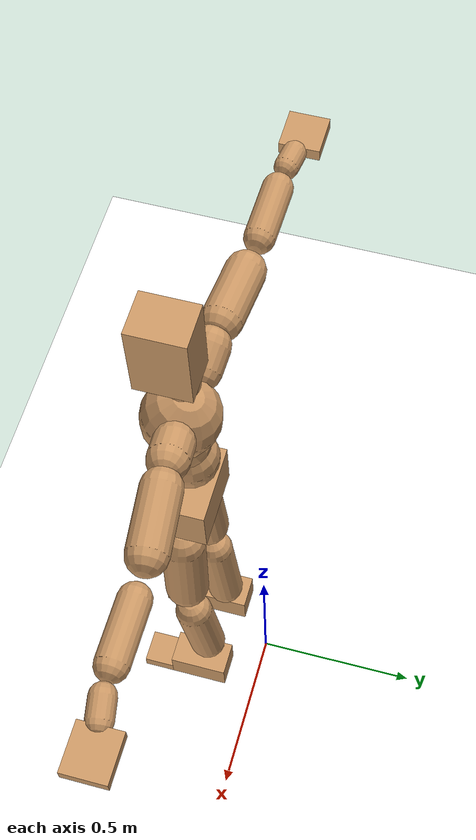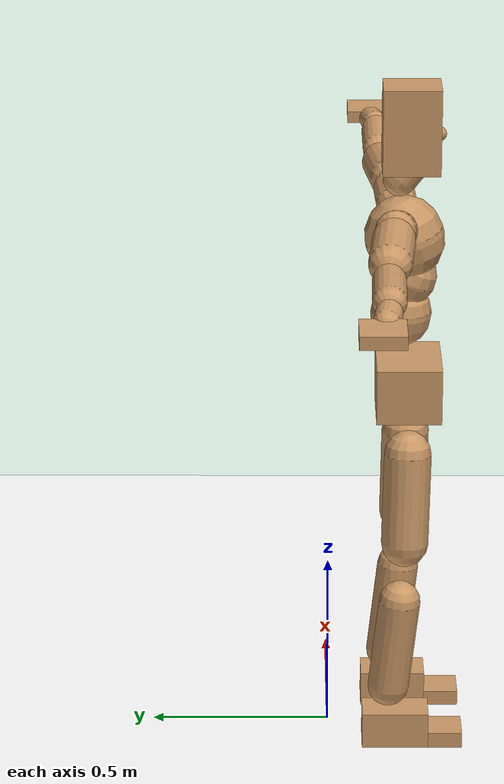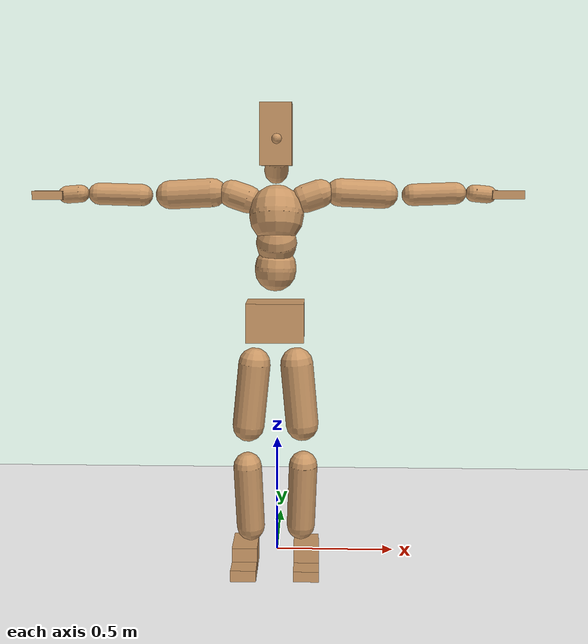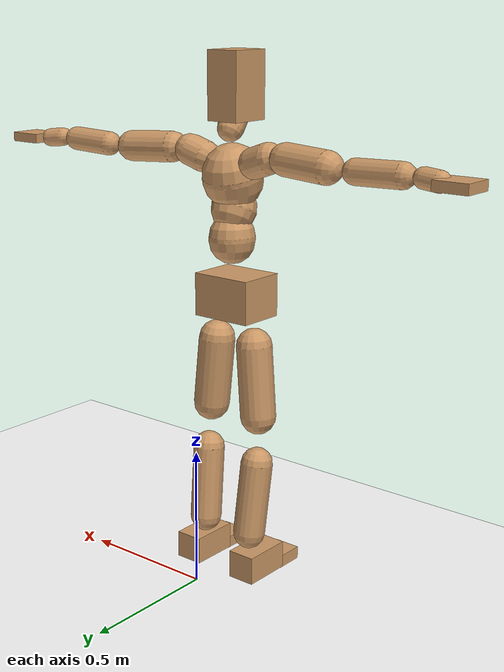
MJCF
<mujoco model="humanoid">
  <option integrator="implicitfast" />

  <visual>
    <global offwidth="1280" offheight="960" />
    <headlight active="1" ambient="0.34 0.34 0.34" diffuse="0.5 0.5 0.5" />
  </visual>

  <default>
    <joint damping="2" stiffness="2" armature="0.01" limited="true" solimplimit="0 .99 .01" />
    <geom condim="1" friction="0.7 0.005 0.0001" solimp=".99 .99 .003" solref="0.015 1" margin="0.001" rgba="0.8 0.6 .4 1" />
    <default class="smplcontact">
      <geom condim="3" friction="1. 0.005 0.0001" solref="0.015 1" solimp="0.98 0.98 0.001" priority="1" />
    </default>
    <default class="stiff_medium">
      <joint stiffness="10" />
    </default>
    <default class="stiff_medium_higher">
      <joint stiffness="50" />
    </default>
    <default class="stiff_high">
      <joint stiffness="100" />
    </default>
  </default>

  <asset>
    <texture type="skybox" builtin="gradient" rgb1="0.99 0.99 0.99" rgb2="0.608 0.828 0.892" width="100" />
    <texture builtin="flat" height="1278" mark="cross" markrgb="1 1 1" name="texgeom" random="0.01" rgb1="0.8 0.6 0.4" rgb2="0.8 0.6 0.4" type="cube" width="127" />
    <texture name="texplane" type="2d" builtin="checker" markrgb="1 1 1" rgb1="0.756 0.772 0.76" rgb2="0.6 0.6 0.6" width="100" height="100" />
    <material name="MatPlane" reflectance="0.5" texture="texplane" texrepeat="1 1" texuniform="true" />
    <material name="geom" texture="texgeom" texuniform="true" />
  </asset>

  <worldbody>
    <light name="tracking_light" pos="0 0 7" dir="0 0 -1" directional="true" cutoff="100" exponent="1" diffuse="1 1 1" specular="0.1 0.1 0.1" mode="trackcom" />
    <camera name="back" pos="0 3 2.4" xyaxes="-1 0 0 0 -1 2" mode="trackcom" />
    <camera name="side" pos="-3 0 2.4" xyaxes="0 -1 0 1 0 2" mode="trackcom" />
    <camera name="front_side" pos="-2.8 -2.8 0.8" xyaxes="0.5 -0.5 0 0.1 0.1 1" mode="trackcom" />
    <geom condim="3" name="floor" pos="0 0 0" rgba="1 1 1 1" size="100 100 .2" type="plane" material="MatPlane" />
    <body name="Pelvis" pos="-0.0018 -0.2233 1.05271" euler="90 0 0">
      <site name="Pelvis" size="0.01" />
      <freejoint name="Pelvis" />
      <geom type="box" pos="-0.0000 -0.0121 -0.0055" size="0.114917 0.077615 0.089225" quat="1.0000 0.0000 0.0000 0.0000" density="3165.830099" name="Pelvis" />
      <body name="L_Hip" pos="0.0781875 -0.102825 -0.00765">
        <joint name="L_Hip_x" type="hinge" pos="0 0 0" axis="1 0 0" stiffness="14.410812000000002" range="-160.0 22.92" class="stiff_medium" damping="22.854949171147215" armature="0.016109777748531916"/>
        <joint name="L_Hip_y" type="hinge" pos="0 0 0" axis="0 1 0" stiffness="14.393977400000002" range="-70.0 70.0" class="stiff_medium" damping="14.845092157070551" armature="0.015310345085849417"/>
        <joint name="L_Hip_z" type="hinge" pos="0 0 0" axis="0 0 1" stiffness="14.397351299999999" range="-28.65 90.0" class="stiff_medium" damping="15.230072573573024" armature="0.016110957200599896"/>
        <geom type="capsule" density="2040.816327" fromto="0.0077625 -0.084375 -0.0010125 0.030825 -0.337725 -0.00405" size="0.0661125" name="L_Hip" />
        <body name="L_Knee" pos="0.0385875 -0.4221 -0.0050625">
          <joint name="L_Knee_x" type="hinge" pos="0 0 0" axis="1 0 0" range="-5.16 171.89" damping="12.104699968495744" armature="0.015966738642201966" stiffness="2.8677538"/>
          <joint name="L_Knee_y" type="hinge" pos="0 0 0" axis="0 1 0" range="-4.58 6.88" damping="11.818803121482325" armature="0.015174685040721753" stiffness="2.8765858"/>
          <joint name="L_Knee_z" type="hinge" pos="0 0 0" axis="0 0 1" range="-6.88 4.58" damping="12.095092915585445" armature="0.015972401753287683" stiffness="2.86218838"/>
          <geom type="capsule" density="1234.567901" fromto="-0.0030375 -0.08955 -0.0097875 -0.0122625 -0.3582 -0.039375" size="0.0581575" name="L_Knee" />
          <body name="L_Ankle" pos="-0.0153 -0.44775 -0.0491625">
            <joint name="L_Ankle_x" type="hinge" pos="0 0 0" axis="1 0 0" range="-45.84 45.84" class="stiff_medium" damping="8.760900554830558" armature="0.015255145253029574" stiffness="13.9758636"/>
            <joint name="L_Ankle_y" type="hinge" pos="0 0 0" axis="0 1 0" range="-74.48 22.92" class="stiff_medium" damping="4.375645586415542" armature="0.015221708564032167" stiffness="13.975854300000002"/>
            <joint name="L_Ankle_z" type="hinge" pos="0 0 0" axis="0 0 1" range="-4.58 4.58" class="stiff_medium" damping="8.688119034588466" armature="0.015002758005398053" stiffness="13.975839999999998"/>
            <geom type="box" pos="0.0262125 -0.0268875 0.027225" size="0.0519225 0.04988 0.091375" quat="1.0000 0.0000 0.0000 0.0000" density="449.071558" name="L_Ankle" class="smplcontact" />
            <body name="L_Toe" pos="0.0297 -0.062775 0.134213">
              <joint name="L_Toe_x" type="hinge" pos="0 0 0" axis="1 0 0" range="-91.67 22.92" armature="0.014875830141426474" damping="2.88376297170037" stiffness="2.7951679999999994"/>
              <joint name="L_Toe_y" type="hinge" pos="0 0 0" axis="0 1 0" range="-4.58 4.58" armature="0.014722348935982876" damping="2.8688478046314474" stiffness="2.7951679999999994"/>
              <joint name="L_Toe_z" type="hinge" pos="0 0 0" axis="0 0 1" range="-4.58 4.58" armature="0.014412018199663328" damping="2.8384507072386" stiffness="2.7951679999999994"/>
              <geom type="box" pos="-0.003375 0.0061875 0.0279" size="0.051385 0.0215 0.05332" quat="1.0000 0.0000 0.0000 0.0000" density="423.206892" name="L_Toe" class="smplcontact" />
            </body>
          </body>
        </body>
      </body>
      <body name="R_Hip" pos="-0.0761625 -0.101813 -0.0048375">
        <joint name="R_Hip_x" type="hinge" pos="0 0 0" axis="1 0 0" stiffness="14.410812000000002" range="-160.0 22.92" class="stiff_medium" damping="22.854949171147215" armature="0.016109777748531916"/>
        <joint name="R_Hip_y" type="hinge" pos="0 0 0" axis="0 1 0" stiffness="14.393977400000002" range="-70.0 70.0" class="stiff_medium" damping="14.845092157070551" armature="0.015310345085849417"/>
        <joint name="R_Hip_z" type="hinge" pos="0 0 0" axis="0 0 1" stiffness="14.397351299999999" range="-90.0 28.65" class="stiff_medium" damping="15.230072573573024" armature="0.016110957200599896"/>
        <geom type="capsule" density="2040.816327" fromto="-0.0086625 -0.0860625 -0.002025 -0.034425 -0.344362 -0.0079875" size="0.065145" name="R_Hip" />
        <body name="R_Knee" pos="-0.0430875 -0.430425 -0.0100125">
          <joint name="R_Knee_x" type="hinge" pos="0 0 0" axis="1 0 0" range="-5.16 171.89" damping="12.104699968495744" armature="0.015966738642201966" stiffness="2.8677538"/>
          <joint name="R_Knee_y" type="hinge" pos="0 0 0" axis="0 1 0" range="-6.88 4.58" damping="11.818803121482325" armature="0.015174685040721753" stiffness="2.8765858"/>
          <joint name="R_Knee_z" type="hinge" pos="0 0 0" axis="0 0 1" range="-4.58 6.88" damping="12.095092915585445" armature="0.015972401753287683" stiffness="2.86218838"/>
          <geom type="capsule" density="1234.567901" fromto="0.0036 -0.0896625 -0.0095625 0.014175 -0.358537 -0.038025" size="0.0581575" name="R_Knee" />
          <body name="R_Ankle" pos="0.017775 -0.4482 -0.0475875">
            <joint name="R_Ankle_x" type="hinge" pos="0 0 0" axis="1 0 0" range="-45.84 45.84" class="stiff_medium" damping="8.760900554830558" armature="0.015255145253029574" stiffness="13.9758636"/>
            <joint name="R_Ankle_y" type="hinge" pos="0 0 0" axis="0 1 0" range="-22.92 74.48" class="stiff_medium" damping="4.375645586415542" armature="0.015221708564032167" stiffness="13.975854300000002"/>
            <joint name="R_Ankle_z" type="hinge" pos="0 0 0" axis="0 0 1" range="-4.58 4.58" class="stiff_medium" damping="8.688119034588466" armature="0.015002758005398053" stiffness="13.975839999999998"/>
            <geom type="box" pos="-0.02385 -0.019575 0.0288" size="0.0519225 0.051385 0.0929875" quat="1.0000 0.0000 0.0000 0.0000" density="434.700981" name="R_Ankle" class="smplcontact" />
            <body name="R_Toe" pos="-0.028575 -0.0541125 0.138713">
              <joint name="R_Toe_x" type="hinge" pos="0 0 0" axis="1 0 0" range="-91.67 22.92" armature="0.014875830141426474" damping="2.88376297170037" stiffness="2.7951679999999994"/>
              <joint name="R_Toe_y" type="hinge" pos="0 0 0" axis="0 1 0" range="-4.58 4.58" armature="0.014722348935982876" damping="2.8688478046314474" stiffness="2.7951679999999994"/>
              <joint name="R_Toe_z" type="hinge" pos="0 0 0" axis="0 0 1" range="-4.58 4.58" armature="0.014412018199663328" damping="2.8384507072386" stiffness="2.7951679999999994"/>
              <geom type="box" pos="0.004725 0.0050625 0.0255375" size="0.0514925 0.02322 0.0529975" quat="1.0000 0.0000 0.0000 0.0000" density="407.384095" name="R_Toe" class="smplcontact" />
            </body>
          </body>
        </body>
      </body>
      <body name="Torso" pos="-0.00275 0.1199 -0.02937">
        <joint name="Torso_x" type="hinge" pos="0 0 0" axis="1 0 0" range="-25.78 57.3" class="stiff_medium" damping="20.638694575886987" armature="0.014235746711939945" stiffness="13.29847"/>
        <joint name="Torso_y" type="hinge" pos="0 0 0" axis="0 1 0" range="-57.3 57.3" class="stiff_high" damping="29.041333557106196" armature="0.016030194160405888" stiffness="131.53288199999997"/>
        <joint name="Torso_z" type="hinge" pos="0 0 0" axis="0 0 1" range="-34.38 34.38" class="stiff_high" damping="28.103522901323004" armature="0.014855044989291149" stiffness="132.9191530612245"/>
        <geom type="capsule" density="2040.816327" fromto="0.00275 0.06688 0.00055 0.0033 0.08173 0.00066" size="0.0826675" name="Torso" />
        <body name="Spine" pos="0.00605 0.14872 0.00121">
          <joint name="Spine_x" type="hinge" pos="0 0 0" axis="1 0 0" stiffness="13.169389599999997" range="-25.78 57.3" class="stiff_medium" damping="20.207068856569617" armature="0.013780293854036105"/>
          <joint name="Spine_y" type="hinge" pos="0 0 0" axis="0 1 0" stiffness="13.1473906" range="-57.3 57.3" class="stiff_high" damping="11.618115097078789" armature="0.016041752423025732"/>
          <joint name="Spine_z" type="hinge" pos="0 0 0" axis="0 0 1" stiffness="26.203810400000002" range="-34.38 34.38" class="stiff_high" damping="16.84061478499759" armature="0.015032075170633681"/>
          <geom type="capsule" density="2040.816327" fromto="0.00077 0.02618 0.01254 0.00088 0.03201 0.0154" size="0.0811625" name="Spine" />
          <body name="Chest" pos="0.00165 0.05819 0.02794">
            <joint name="Chest_x" type="hinge" pos="0 0 0" axis="1 0 0" stiffness="12.987744285714287" range="-25.78 57.3" class="stiff_medium" damping="19.89224937555902" armature="0.013541025087942176"/>
            <joint name="Chest_y" type="hinge" pos="0 0 0" axis="0 1 0" stiffness="13.579875625" range="-57.3 57.3" class="stiff_high" damping="11.81270746764638" armature="0.016055474011864863"/>
            <joint name="Chest_z" type="hinge" pos="0 0 0" axis="0 0 1" stiffness="25.9366268" range="-34.38 34.38" class="stiff_high" damping="16.82081173988103" armature="0.015151230694932393"/>
            <geom type="capsule" density="2040.816327" fromto="-0.00099 0.07502 -0.01903 -0.0011 0.09163 -0.02332" size="0.107715" name="Chest" />
            <body name="Neck" pos="-0.00308 0.23529 -0.04719">
              <joint name="Neck_x" type="hinge" pos="0 0 0" axis="1 0 0" range="-28.65 57.3" class="stiff_medium_higher" damping="11.305598073646944" armature="0.011369242829146918" stiffness="56.211547999999986"/>
              <joint name="Neck_y" type="hinge" pos="0 0 0" axis="0 1 0" range="-40.11 40.11" class="stiff_medium_higher" damping="11.350487865206517" armature="0.011499982288412125" stiffness="56.014684"/>
              <joint name="Neck_z" type="hinge" pos="0 0 0" axis="0 0 1" range="-40.11 40.11" class="stiff_medium_higher" damping="11.245455209418221" armature="0.011356326653095206" stiffness="55.678331"/>
              <geom type="capsule" density="1000" fromto="0.0011 0.0143 0.01133 0.00451 0.0572 0.04521" size="0.04687" name="Neck" />
              <body name="Head" pos="0.00533 0.066625 0.0525825">
                <joint name="Head_x" type="hinge" pos="0 0 0" axis="1 0 0" range="-28.65 57.3" class="stiff_medium_higher" damping="2.235050866262729" armature="0.011314082128906286" stiffness="55.19065"/>
                <joint name="Head_y" type="hinge" pos="0 0 0" axis="0 1 0" range="-40.11 40.11" class="stiff_medium_higher" damping="2.235050866262725" armature="0.011314082128906248" stiffness="55.19065"/>
                <joint name="Head_z" type="hinge" pos="0 0 0" axis="0 0 1" range="-40.11 40.11" class="stiff_medium_higher" damping="2.235050866262726" armature="0.011314082128906262" stiffness="55.19065"/>
                <geom type="box" pos="-0.004305 0.08979 -0.01189" size="0.062115 0.118285 0.0779" quat="1.0000 0.0000 0.0000 0.0000" density="1018.069894" name="Head" />
                <geom type="capsule" name="nose" size="0.0205 0.01025" pos="0 0.07175 0.05125" quat="1 0 0 0" mass="0" contype="0" conaffinity="0" />
              </body>
            </body>
            <body name="L_Thorax" pos="0.08865 0.136912 -0.0383625">
              <joint name="L_Thorax_x" type="hinge" pos="0 0 0" axis="1 0 0" range="-10.89 4.58" class="stiff_medium_higher" damping="29.875416737227255" armature="0.015524661108522114" stiffness="71.864735"/>
              <joint name="L_Thorax_y" type="hinge" pos="0 0 0" axis="0 1 0" range="-28.65 17.19" class="stiff_medium_higher" damping="30.46023224133231" armature="0.016120725450527895" stiffness="71.943548"/>
              <joint name="L_Thorax_z" type="hinge" pos="0 0 0" axis="0 0 1" range="-31.51 40.11" class="stiff_medium_higher" damping="30.46042444933095" armature="0.016121264685985192" stiffness="71.9420495"/>
              <geom type="capsule" density="1000" fromto="0.020475 0.0068625 -0.002025 0.0819 0.02745 -0.0079875" size="0.0560075" name="L_Thorax" />
              <body name="L_Shoulder" pos="0.102375 0.0343125 -0.0100125">
                <joint name="L_Shoulder_x" type="hinge" pos="0 0 0" axis="1 0 0" range="-97.4 97.4" class="stiff_medium" damping="8.891497511873233" armature="0.015287725943742305" stiffness="14.3649604"/>
                <joint name="L_Shoulder_y" type="hinge" pos="0 0 0" axis="0 1 0" range="-108.86 80.21" class="stiff_medium" damping="9.12932330228466" armature="0.01609825374583502" stiffness="14.381225800000001"/>
                <joint name="L_Shoulder_z" type="hinge" pos="0 0 0" axis="0 0 1" range="-97.4 85.94" class="stiff_medium" damping="9.129671606651154" armature="0.016098940105424855" stiffness="14.381709999999998"/>
                <geom type="capsule" density="1000" fromto="0.0583875 -0.002925 -0.0061875 0.233662 -0.011475 -0.02475" size="0.0555775" name="L_Shoulder" />
                <body name="L_Elbow" pos="0.29205 -0.0144 -0.0309375">
                  <joint name="L_Elbow_x" type="hinge" pos="0 0 0" axis="1 0 0" range="-17.19 4.58" damping="7.30576719565563" armature="0.014915352919147376" stiffness="2.8627808999999997"/>
                  <joint name="L_Elbow_y" type="hinge" pos="0 0 0" axis="0 1 0" range="-180.0 17.19" damping="7.564194946716546" armature="0.01598908159050902" stiffness="2.86280584"/>
                  <joint name="L_Elbow_z" type="hinge" pos="0 0 0" axis="0 0 1" range="-100.84 4.58" damping="7.5645786108349125" armature="0.01599268139557873" stiffness="2.8624517999999997"/>
                  <geom type="capsule" density="1000" fromto="0.056025 0.002025 -0.000225 0.224325 0.0081 -0.0010125" size="0.0435375" name="L_Elbow" />
                  <body name="L_Wrist" pos="0.28035 0.010125 -0.00135">
                    <joint name="L_Wrist_x" type="hinge" pos="0 0 0" axis="1 0 0" range="-180.0 22.92" armature="0.014818983949092077" damping="2.890332271402255" stiffness="2.8186887400000007"/>
                    <joint name="L_Wrist_y" type="hinge" pos="0 0 0" axis="0 1 0" range="-17.19 17.19" armature="0.015629307437106565" damping="2.970094728305097" stiffness="2.8220900799999997"/>
                    <joint name="L_Wrist_z" type="hinge" pos="0 0 0" axis="0 0 1" range="-22.92 22.92" armature="0.01567420436707499" damping="2.97377994637546" stiffness="2.8209939600000005"/>
                    <geom type="capsule" density="1000" fromto="0.0189 -0.0018 -0.003375 0.0756 -0.0073125 -0.0135" size="0.034185" name="L_Wrist" class="smplcontact" />
                    <body name="L_Hand" pos="0.0945 -0.009225 -0.0167625">
                      <joint name="L_Hand_x" type="hinge" pos="0 0 0" axis="1 0 0" range="-17.19 17.19" armature="0.014415827577295884" damping="2.8388258114077716" stiffness="2.7951679999999994"/>
                      <joint name="L_Hand_y" type="hinge" pos="0 0 0" axis="0 1 0" range="-51.57 51.57" armature="0.015076278672215677" damping="2.9031269935591775" stiffness="2.7951679999999994"/>
                      <joint name="L_Hand_z" type="hinge" pos="0 0 0" axis="0 0 1" range="-91.67 91.67" armature="0.015252330935363094" damping="2.9200283339699626" stiffness="2.7951679999999994"/>
                      <geom type="box" pos="0.0554625 0.001125 -0.006525" size="0.0628875 0.016985 0.057835" quat="1.0000 0.0000 0.0000 0.0000" density="400.552564" name="L_Hand" class="smplcontact" />
                    </body>
                  </body>
                </body>
              </body>
            </body>
            <body name="R_Thorax" pos="-0.092025 0.13365 -0.043425">
              <joint name="R_Thorax_x" type="hinge" pos="0 0 0" axis="1 0 0" range="-10.89 4.58" class="stiff_medium_higher" damping="29.875416737227255" armature="0.015524661108522114" stiffness="71.864735"/>
              <joint name="R_Thorax_y" type="hinge" pos="0 0 0" axis="0 1 0" range="-17.19 28.65" class="stiff_medium_higher" damping="30.46023224133231" armature="0.016120725450527895" stiffness="71.943548"/>
              <joint name="R_Thorax_z" type="hinge" pos="0 0 0" axis="0 0 1" range="-40.11 31.51" class="stiff_medium_higher" damping="30.46042444933095" armature="0.016121264685985192" stiffness="71.9420495"/>
              <geom type="capsule" density="1000" fromto="-0.0216 0.0073125 -0.002025 -0.0864 0.02925 -0.0082125" size="0.0549325" name="R_Thorax" />
              <body name="R_Shoulder" pos="-0.108 0.036675 -0.0102375">
                <joint name="R_Shoulder_x" type="hinge" pos="0 0 0" axis="1 0 0" range="-97.4 97.4" class="stiff_medium" damping="8.891497511873233" armature="0.015287725943742305" stiffness="14.3649604"/>
                <joint name="R_Shoulder_y" type="hinge" pos="0 0 0" axis="0 1 0" range="-80.21 108.86" class="stiff_medium" damping="9.12932330228466" armature="0.01609825374583502" stiffness="14.381225800000001"/>
                <joint name="R_Shoulder_z" type="hinge" pos="0 0 0" axis="0 0 1" range="-85.94 97.4" class="stiff_medium" damping="9.129671606651154" armature="0.016098940105424855" stiffness="14.381709999999998"/>
                <geom type="capsule" density="1000" fromto="-0.0570375 -0.0030375 -0.0048375 -0.228375 -0.0120375 -0.0192375" size="0.0570825" name="R_Shoulder" />
                <body name="R_Elbow" pos="-0.285412 -0.0149625 -0.024075">
                  <joint name="R_Elbow_x" type="hinge" pos="0 0 0" axis="1 0 0" range="-17.19 4.58" damping="7.30576719565563" armature="0.014915352919147376" stiffness="2.8627808999999997"/>
                  <joint name="R_Elbow_y" type="hinge" pos="0 0 0" axis="0 1 0" range="-17.19 180.0" damping="7.564194946716546" armature="0.01598908159050902" stiffness="2.86280584"/>
                  <joint name="R_Elbow_z" type="hinge" pos="0 0 0" axis="0 0 1" range="-4.58 100.84" damping="7.5645786108349125" armature="0.01599268139557873" stiffness="2.8624517999999997"/>
                  <geom type="capsule" density="1000" fromto="-0.0574875 0.0018 -0.0012375 -0.229725 0.006975 -0.00495" size="0.04386" name="R_Elbow" />
                  <body name="R_Wrist" pos="-0.287213 0.008775 -0.0063">
                    <joint name="R_Wrist_x" type="hinge" pos="0 0 0" axis="1 0 0" range="-180.0 22.92" armature="0.014818983949092077" damping="2.890332271402255" stiffness="2.8186887400000007"/>
                    <joint name="R_Wrist_y" type="hinge" pos="0 0 0" axis="0 1 0" range="-17.19 17.19" armature="0.015629307437106565" damping="2.970094728305097" stiffness="2.8220900799999997"/>
                    <joint name="R_Wrist_z" type="hinge" pos="0 0 0" axis="0 0 1" range="-22.92 22.92" armature="0.01567420436707499" damping="2.97377994637546" stiffness="2.8209939600000005"/>
                    <geom type="capsule" density="1000" fromto="-0.0190125 -0.00135 -0.0023625 -0.0761625 -0.0055125 -0.0093375" size="0.035045" name="R_Wrist" class="smplcontact" />
                    <body name="R_Hand" pos="-0.095175 -0.0068625 -0.0115875">
                      <joint name="R_Hand_x" type="hinge" pos="0 0 0" axis="1 0 0" range="-17.19 17.19" armature="0.014415827577295884" damping="2.8388258114077716" stiffness="2.7951679999999994"/>
                      <joint name="R_Hand_y" type="hinge" pos="0 0 0" axis="0 1 0" range="-51.57 51.57" armature="0.015076278672215677" damping="2.9031269935591775" stiffness="2.7951679999999994"/>
                      <joint name="R_Hand_z" type="hinge" pos="0 0 0" axis="0 0 1" range="-91.67 91.67" armature="0.015252330935363094" damping="2.9200283339699626" stiffness="2.7951679999999994"/>
                      <geom type="box" pos="-0.051975 -0.0010125 -0.0088875" size="0.0611675 0.01763 0.058695" quat="1.0000 0.0000 0.0000 0.0000" density="403.679611" name="R_Hand" class="smplcontact" />
                    </body>
                  </body>
                </body>
              </body>
            </body>
          </body>
        </body>
      </body>
    </body>
  </worldbody>
  <actuator>
    <general name="L_Hip_x" joint="L_Hip_x" biastype="affine" gainprm="414.0659535654464" biasprm="-310.30046421797175 -259.39461600000004 -3.047326556152962" ctrllimited="true" ctrlrange="-1 1" forcerange="-518.7892320000001 518.7892320000001" />
    <general name="L_Hip_y" joint="L_Hip_y" biastype="affine" gainprm="316.5400955904426" biasprm="0.0 -259.09159320000003 -2.9690184314141104" ctrllimited="true" ctrlrange="-1 1" forcerange="-518.1831864000001 518.1831864000001" />
    <general name="L_Hip_z" joint="L_Hip_z" biastype="affine" gainprm="268.33061206881064" biasprm="138.74490560827246 -259.1523234 -3.0460145147146047" ctrllimited="true" ctrlrange="-1 1" forcerange="-518.3046468 518.3046468" />
    <general name="L_Knee_x" joint="L_Knee_x" biastype="affine" gainprm="398.77477289288123" biasprm="375.53074207528994 -258.097842 -3.026174992123936" ctrllimited="true" ctrlrange="-1 1" forcerange="-516.195684 516.195684" />
    <general name="L_Knee_y" joint="L_Knee_y" biastype="affine" gainprm="25.891179239847556" biasprm="5.196309969602913 -258.892722 -2.9547007803705814" ctrllimited="true" ctrlrange="-1 1" forcerange="-517.785444 517.785444" />
    <general name="L_Knee_z" joint="L_Knee_z" biastype="affine" gainprm="25.761592915041472" biasprm="-5.170302242983891 -257.5969542 -3.0237732288963612" ctrllimited="true" ctrlrange="-1 1" forcerange="-515.1939084 515.1939084" />
    <general name="L_Ankle_x" joint="L_Ankle_x" biastype="affine" gainprm="100.63363018735926" biasprm="0.0 -125.7827724 -2.9203001849435193" ctrllimited="true" ctrlrange="-1 1" forcerange="-251.5655448 251.5655448" />
    <general name="L_Ankle_y" joint="L_Ankle_y" biastype="affine" gainprm="106.91218431352944" biasprm="-56.595402702316 -125.78268870000001 -2.917097057610362" ctrllimited="true" ctrlrange="-1 1" forcerange="-251.56537740000002 251.56537740000002" />
    <general name="L_Ankle_z" joint="L_Ankle_z" biastype="affine" gainprm="10.054564746229916" biasprm="0.0 -125.78255999999998 -2.8960396781961553" ctrllimited="true" ctrlrange="-1 1" forcerange="-251.56511999999995 251.56511999999995" />
    <general name="L_Toe_x" joint="L_Toe_x" biastype="affine" gainprm="100.62467897558831" biasprm="-60.371294873651244 -100.62604799999998 -1.153505188680148" ctrllimited="true" ctrlrange="-1 1" forcerange="-201.25209599999997 201.25209599999997" />
    <general name="L_Toe_y" joint="L_Toe_y" biastype="affine" gainprm="8.043651796983934" biasprm="0.0 -100.62604799999998 -1.147539121852579" ctrllimited="true" ctrlrange="-1 1" forcerange="-201.25209599999997 201.25209599999997" />
    <general name="L_Toe_z" joint="L_Toe_z" biastype="affine" gainprm="8.043651796983934" biasprm="0.0 -100.62604799999998 -1.13538028289544" ctrllimited="true" ctrlrange="-1 1" forcerange="-201.25209599999997 201.25209599999997" />
    <general name="R_Hip_x" joint="R_Hip_x" biastype="affine" gainprm="414.0659535654464" biasprm="-310.30046421797175 -259.39461600000004 -3.047326556152962" ctrllimited="true" ctrlrange="-1 1" forcerange="-518.7892320000001 518.7892320000001" />
    <general name="R_Hip_y" joint="R_Hip_y" biastype="affine" gainprm="316.5400955904426" biasprm="0.0 -259.09159320000003 -2.9690184314141104" ctrllimited="true" ctrlrange="-1 1" forcerange="-518.1831864000001 518.1831864000001" />
    <general name="R_Hip_z" joint="R_Hip_z" biastype="affine" gainprm="268.33061206881064" biasprm="-138.74490560827246 -259.1523234 -3.0460145147146047" ctrllimited="true" ctrlrange="-1 1" forcerange="-518.3046468 518.3046468" />
    <general name="R_Knee_x" joint="R_Knee_x" biastype="affine" gainprm="398.77477289288123" biasprm="375.53074207528994 -258.097842 -3.026174992123936" ctrllimited="true" ctrlrange="-1 1" forcerange="-516.195684 516.195684" />
    <general name="R_Knee_y" joint="R_Knee_y" biastype="affine" gainprm="25.891179239847556" biasprm="-5.196309969602913 -258.892722 -2.9547007803705814" ctrllimited="true" ctrlrange="-1 1" forcerange="-517.785444 517.785444" />
    <general name="R_Knee_z" joint="R_Knee_z" biastype="affine" gainprm="25.761592915041472" biasprm="5.170302242983891 -257.5969542 -3.0237732288963612" ctrllimited="true" ctrlrange="-1 1" forcerange="-515.1939084 515.1939084" />
    <general name="R_Ankle_x" joint="R_Ankle_x" biastype="affine" gainprm="100.63363018735926" biasprm="0.0 -125.7827724 -2.9203001849435193" ctrllimited="true" ctrlrange="-1 1" forcerange="-251.5655448 251.5655448" />
    <general name="R_Ankle_y" joint="R_Ankle_y" biastype="affine" gainprm="106.91218431352944" biasprm="56.595402702316 -125.78268870000001 -2.917097057610362" ctrllimited="true" ctrlrange="-1 1" forcerange="-251.56537740000002 251.56537740000002" />
    <general name="R_Ankle_z" joint="R_Ankle_z" biastype="affine" gainprm="10.054564746229916" biasprm="0.0 -125.78255999999998 -2.8960396781961553" ctrllimited="true" ctrlrange="-1 1" forcerange="-251.56511999999995 251.56511999999995" />
    <general name="R_Toe_x" joint="R_Toe_x" biastype="affine" gainprm="100.62467897558831" biasprm="-60.371294873651244 -100.62604799999998 -1.153505188680148" ctrllimited="true" ctrlrange="-1 1" forcerange="-201.25209599999997 201.25209599999997" />
    <general name="R_Toe_y" joint="R_Toe_y" biastype="affine" gainprm="8.043651796983934" biasprm="0.0 -100.62604799999998 -1.147539121852579" ctrllimited="true" ctrlrange="-1 1" forcerange="-201.25209599999997 201.25209599999997" />
    <general name="R_Toe_z" joint="R_Toe_z" biastype="affine" gainprm="8.043651796983934" biasprm="0.0 -100.62604799999998 -1.13538028289544" ctrllimited="true" ctrlrange="-1 1" forcerange="-201.25209599999997 201.25209599999997" />
    <general name="Torso_x" joint="Torso_x" biastype="affine" gainprm="231.39649663327813" biasprm="87.79029337844156 -319.16328 -5.503651886903197" ctrllimited="true" ctrlrange="-1 1" forcerange="-478.74492 478.74492" />
    <general name="Torso_y" joint="Torso_y" biastype="affine" gainprm="315.7021701486735" biasprm="0.0 -315.6789167999999 -5.808266711421239" ctrllimited="true" ctrlrange="-1 1" forcerange="-473.5183751999999 473.5183751999999" />
    <general name="Torso_z" joint="Torso_z" biastype="affine" gainprm="191.41767946247367" biasprm="0.0 -319.0059673469388 -5.620704580264601" ctrllimited="true" ctrlrange="-1 1" forcerange="-478.50895102040823 478.50895102040823" />
    <general name="Spine_x" joint="Spine_x" biastype="affine" gainprm="229.15046740254536" biasprm="86.93816481136528 -316.06535039999994 -5.388551695085231" ctrllimited="true" ctrlrange="-1 1" forcerange="-474.09802559999986 474.09802559999986" />
    <general name="Spine_y" joint="Spine_y" biastype="affine" gainprm="315.5606173224632" biasprm="0.0 -315.5373744 -5.8090575485393945" ctrllimited="true" ctrlrange="-1 1" forcerange="-473.30606159999996 473.30606159999996" />
    <general name="Spine_z" joint="Spine_z" biastype="affine" gainprm="188.68133238602005" biasprm="0.0 -314.44572480000005 -5.613538261665864" ctrllimited="true" ctrlrange="-1 1" forcerange="-471.66858720000005 471.66858720000005" />
    <general name="Chest_x" joint="Chest_x" biastype="affine" gainprm="225.98979633620735" biasprm="85.73902720892217 -311.7058628571429 -5.304599833482405" ctrllimited="true" ctrlrange="-1 1" forcerange="-467.5587942857143 467.5587942857143" />
    <general name="Chest_y" joint="Chest_y" biastype="affine" gainprm="325.9410225012461" biasprm="0.0 -325.917015 -5.90635373382319" ctrllimited="true" ctrlrange="-1 1" forcerange="-488.8755225 488.8755225" />
    <general name="Chest_z" joint="Chest_z" biastype="affine" gainprm="186.75746876198411" biasprm="0.0 -311.2395216 -5.606937246627011" ctrllimited="true" ctrlrange="-1 1" forcerange="-466.8592824 466.8592824" />
    <general name="Neck_x" joint="Neck_x" biastype="affine" gainprm="30.356471855293748" biasprm="10.118823951764583 -40.472314559999994 -0.9044478458917556" ctrllimited="true" ctrlrange="-1 1" forcerange="-80.94462911999999 80.94462911999999" />
    <general name="Neck_y" joint="Neck_y" biastype="affine" gainprm="28.233480300297522" biasprm="0.0 -40.33057248 -0.9080390292165215" ctrllimited="true" ctrlrange="-1 1" forcerange="-80.66114496 80.66114496" />
    <general name="Neck_z" joint="Neck_z" biastype="affine" gainprm="28.063945901077382" biasprm="0.0 -40.08839832 -0.8996364167534576" ctrllimited="true" ctrlrange="-1 1" forcerange="-80.17679664 80.17679664" />
    <general name="Head_x" joint="Head_x" biastype="affine" gainprm="19.870097551252496" biasprm="6.623365850417498 -26.491512 -0.8940203465050915" ctrllimited="true" ctrlrange="-1 1" forcerange="-52.983024 52.983024" />
    <general name="Head_y" joint="Head_y" biastype="affine" gainprm="18.545424381168996" biasprm="0.0 -26.491512 -0.89402034650509" ctrllimited="true" ctrlrange="-1 1" forcerange="-52.983024 52.983024" />
    <general name="Head_z" joint="Head_z" biastype="affine" gainprm="18.545424381168996" biasprm="0.0 -26.491512 -0.8940203465050905" ctrllimited="true" ctrlrange="-1 1" forcerange="-52.983024 52.983024" />
    <general name="L_Thorax_x" joint="L_Thorax_x" biastype="affine" gainprm="23.284384153206016" biasprm="-9.497379703085327 -172.475364 -2.3900333389781805" ctrllimited="true" ctrlrange="-1 1" forcerange="-344.950728 344.950728" />
    <general name="L_Thorax_y" joint="L_Thorax_y" biastype="affine" gainprm="69.07089356346732" biasprm="-17.26772339086683 -172.66451520000004 -2.436818579306585" ctrllimited="true" ctrlrange="-1 1" forcerange="-345.3290304000001 345.3290304000001" />
    <general name="L_Thorax_z" joint="L_Thorax_z" biastype="affine" gainprm="107.91348952353883" biasprm="12.958056547087878 -172.6609188 -2.4368339559464762" ctrllimited="true" ctrlrange="-1 1" forcerange="-345.3218376 345.3218376" />
    <general name="L_Shoulder_x" joint="L_Shoulder_x" biastype="affine" gainprm="117.21467694971426" biasprm="0.0 -68.95180992 -2.3710660031661956" ctrllimited="true" ctrlrange="-1 1" forcerange="-137.90361984 137.90361984" />
    <general name="L_Shoulder_y" joint="L_Shoulder_y" biastype="affine" gainprm="113.89565033013263" biasprm="-17.25874216934627 -69.02988384000001 -2.4344862139425767" ctrllimited="true" ctrlrange="-1 1" forcerange="-138.05976768000002 138.05976768000002" />
    <general name="L_Shoulder_z" joint="L_Shoulder_z" biastype="affine" gainprm="110.44762042054228" biasprm="-6.9037293008586085 -69.032208 -2.4345790951069746" ctrllimited="true" ctrlrange="-1 1" forcerange="-138.064416 138.064416" />
    <general name="L_Elbow_x" joint="L_Elbow_x" biastype="affine" gainprm="19.57926627419141" biasprm="-11.341044911233523 -103.0601124 -1.168922751304901" ctrllimited="true" ctrlrange="-1 1" forcerange="-206.1202248 206.1202248" />
    <general name="L_Elbow_y" joint="L_Elbow_y" biastype="affine" gainprm="177.3481465993961" biasprm="-146.42756604213034 -103.06101024 -1.2102711914746473" ctrllimited="true" ctrlrange="-1 1" forcerange="-206.12202048 206.12202048" />
    <general name="L_Elbow_z" joint="L_Elbow_z" biastype="affine" gainprm="94.80059585135389" biasprm="-86.56332153909435 -103.04826479999998 -1.210332577733586" ctrllimited="true" ctrlrange="-1 1" forcerange="-206.09652959999997 206.09652959999997" />
    <general name="L_Wrist_x" joint="L_Wrist_x" biastype="affine" gainprm="29.948191157266802" biasprm="-23.182839872774835 -16.912132440000004 -1.156132908560902" ctrllimited="true" ctrlrange="-1 1" forcerange="-33.82426488000001 33.82426488000001" />
    <general name="L_Wrist_y" joint="L_Wrist_y" biastype="affine" gainprm="5.080136326354371" biasprm="0.0 -16.93254048 -1.1880378913220389" ctrllimited="true" ctrlrange="-1 1" forcerange="-33.86508096 33.86508096" />
    <general name="L_Wrist_z" joint="L_Wrist_z" biastype="affine" gainprm="6.770884220025687" biasprm="0.0 -16.925963760000002 -1.1895119785501842" ctrllimited="true" ctrlrange="-1 1" forcerange="-33.851927520000004 33.851927520000004" />
    <general name="L_Hand_x" joint="L_Hand_x" biastype="affine" gainprm="5.031673012742135" biasprm="0.0 -16.771007999999995 -1.1355303245631088" ctrllimited="true" ctrlrange="-1 1" forcerange="-33.54201599999999 33.54201599999999" />
    <general name="L_Hand_y" joint="L_Hand_y" biastype="affine" gainprm="15.0950190382264" biasprm="0.0 -16.771007999999995 -1.161250797423671" ctrllimited="true" ctrlrange="-1 1" forcerange="-33.54201599999999 33.54201599999999" />
    <general name="L_Hand_z" joint="L_Hand_z" biastype="affine" gainprm="26.832662308206594" biasprm="0.0 -16.771007999999995 -1.1680113335879851" ctrllimited="true" ctrlrange="-1 1" forcerange="-33.54201599999999 33.54201599999999" />
    <general name="R_Thorax_x" joint="R_Thorax_x" biastype="affine" gainprm="23.284384153206016" biasprm="-9.497379703085327 -172.475364 -2.3900333389781805" ctrllimited="true" ctrlrange="-1 1" forcerange="-344.950728 344.950728" />
    <general name="R_Thorax_y" joint="R_Thorax_y" biastype="affine" gainprm="69.07089356346732" biasprm="17.26772339086682 -172.66451520000004 -2.436818579306585" ctrllimited="true" ctrlrange="-1 1" forcerange="-345.3290304000001 345.3290304000001" />
    <general name="R_Thorax_z" joint="R_Thorax_z" biastype="affine" gainprm="107.91348952353883" biasprm="-12.958056547087878 -172.6609188 -2.4368339559464762" ctrllimited="true" ctrlrange="-1 1" forcerange="-345.3218376 345.3218376" />
    <general name="R_Shoulder_x" joint="R_Shoulder_x" biastype="affine" gainprm="117.21467694971426" biasprm="0.0 -68.95180992 -2.3710660031661956" ctrllimited="true" ctrlrange="-1 1" forcerange="-137.90361984 137.90361984" />
    <general name="R_Shoulder_y" joint="R_Shoulder_y" biastype="affine" gainprm="113.89565033013263" biasprm="17.25874216934627 -69.02988384000001 -2.4344862139425767" ctrllimited="true" ctrlrange="-1 1" forcerange="-138.05976768000002 138.05976768000002" />
    <general name="R_Shoulder_z" joint="R_Shoulder_z" biastype="affine" gainprm="110.44762042054228" biasprm="6.903729300858593 -69.032208 -2.4345790951069746" ctrllimited="true" ctrlrange="-1 1" forcerange="-138.064416 138.064416" />
    <general name="R_Elbow_x" joint="R_Elbow_x" biastype="affine" gainprm="19.57926627419141" biasprm="-11.341044911233523 -103.0601124 -1.168922751304901" ctrllimited="true" ctrlrange="-1 1" forcerange="-206.1202248 206.1202248" />
    <general name="R_Elbow_y" joint="R_Elbow_y" biastype="affine" gainprm="177.3481465993961" biasprm="146.42756604213034 -103.06101024 -1.2102711914746473" ctrllimited="true" ctrlrange="-1 1" forcerange="-206.12202048 206.12202048" />
    <general name="R_Elbow_z" joint="R_Elbow_z" biastype="affine" gainprm="94.80059585135389" biasprm="86.56332153909433 -103.04826479999998 -1.210332577733586" ctrllimited="true" ctrlrange="-1 1" forcerange="-206.09652959999997 206.09652959999997" />
    <general name="R_Wrist_x" joint="R_Wrist_x" biastype="affine" gainprm="29.948191157266802" biasprm="-23.182839872774835 -16.912132440000004 -1.156132908560902" ctrllimited="true" ctrlrange="-1 1" forcerange="-33.82426488000001 33.82426488000001" />
    <general name="R_Wrist_y" joint="R_Wrist_y" biastype="affine" gainprm="5.080136326354371" biasprm="0.0 -16.93254048 -1.1880378913220389" ctrllimited="true" ctrlrange="-1 1" forcerange="-33.86508096 33.86508096" />
    <general name="R_Wrist_z" joint="R_Wrist_z" biastype="affine" gainprm="6.770884220025687" biasprm="0.0 -16.925963760000002 -1.1895119785501842" ctrllimited="true" ctrlrange="-1 1" forcerange="-33.851927520000004 33.851927520000004" />
    <general name="R_Hand_x" joint="R_Hand_x" biastype="affine" gainprm="5.031673012742135" biasprm="0.0 -16.771007999999995 -1.1355303245631088" ctrllimited="true" ctrlrange="-1 1" forcerange="-33.54201599999999 33.54201599999999" />
    <general name="R_Hand_y" joint="R_Hand_y" biastype="affine" gainprm="15.0950190382264" biasprm="0.0 -16.771007999999995 -1.161250797423671" ctrllimited="true" ctrlrange="-1 1" forcerange="-33.54201599999999 33.54201599999999" />
    <general name="R_Hand_z" joint="R_Hand_z" biastype="affine" gainprm="26.832662308206594" biasprm="0.0 -16.771007999999995 -1.1680113335879851" ctrllimited="true" ctrlrange="-1 1" forcerange="-33.54201599999999 33.54201599999999" />
  </actuator>
  <contact>
    <exclude body1="Torso" body2="Chest" />
    <exclude body1="Head" body2="Chest" />
    <exclude body1="R_Knee" body2="R_Toe" />
    <exclude body1="R_Knee" body2="L_Ankle" />
    <exclude body1="R_Knee" body2="L_Toe" />
    <exclude body1="L_Knee" body2="L_Toe" />
    <exclude body1="L_Knee" body2="R_Ankle" />
    <exclude body1="L_Knee" body2="R_Toe" />
    <exclude body1="L_Shoulder" body2="Chest" />
    <exclude body1="R_Shoulder" body2="Chest" />
  </contact>
  <sensor>
    <framelinvel name="sensor_Pelvis_framelinvel" objtype="xbody" objname="Pelvis" />
    <framelinvel name="sensor_L_Hip_framelinvel" objtype="xbody" objname="L_Hip" />
    <framelinvel name="sensor_L_Knee_framelinvel" objtype="xbody" objname="L_Knee" />
    <framelinvel name="sensor_L_Ankle_framelinvel" objtype="xbody" objname="L_Ankle" />
    <framelinvel name="sensor_L_Toe_framelinvel" objtype="xbody" objname="L_Toe" />
    <framelinvel name="sensor_R_Hip_framelinvel" objtype="xbody" objname="R_Hip" />
    <framelinvel name="sensor_R_Knee_framelinvel" objtype="xbody" objname="R_Knee" />
    <framelinvel name="sensor_R_Ankle_framelinvel" objtype="xbody" objname="R_Ankle" />
    <framelinvel name="sensor_R_Toe_framelinvel" objtype="xbody" objname="R_Toe" />
    <framelinvel name="sensor_Torso_framelinvel" objtype="xbody" objname="Torso" />
    <framelinvel name="sensor_Spine_framelinvel" objtype="xbody" objname="Spine" />
    <framelinvel name="sensor_Chest_framelinvel" objtype="xbody" objname="Chest" />
    <framelinvel name="sensor_Neck_framelinvel" objtype="xbody" objname="Neck" />
    <framelinvel name="sensor_Head_framelinvel" objtype="xbody" objname="Head" />
    <framelinvel name="sensor_L_Thorax_framelinvel" objtype="xbody" objname="L_Thorax" />
    <framelinvel name="sensor_L_Shoulder_framelinvel" objtype="xbody" objname="L_Shoulder" />
    <framelinvel name="sensor_L_Elbow_framelinvel" objtype="xbody" objname="L_Elbow" />
    <framelinvel name="sensor_L_Wrist_framelinvel" objtype="xbody" objname="L_Wrist" />
    <framelinvel name="sensor_L_Hand_framelinvel" objtype="xbody" objname="L_Hand" />
    <framelinvel name="sensor_R_Thorax_framelinvel" objtype="xbody" objname="R_Thorax" />
    <framelinvel name="sensor_R_Shoulder_framelinvel" objtype="xbody" objname="R_Shoulder" />
    <framelinvel name="sensor_R_Elbow_framelinvel" objtype="xbody" objname="R_Elbow" />
    <framelinvel name="sensor_R_Wrist_framelinvel" objtype="xbody" objname="R_Wrist" />
    <framelinvel name="sensor_R_Hand_framelinvel" objtype="xbody" objname="R_Hand" />
    <frameangvel name="sensor_Pelvis_frameangvel" objtype="xbody" objname="Pelvis" />
    <frameangvel name="sensor_L_Hip_frameangvel" objtype="xbody" objname="L_Hip" />
    <frameangvel name="sensor_L_Knee_frameangvel" objtype="xbody" objname="L_Knee" />
    <frameangvel name="sensor_L_Ankle_frameangvel" objtype="xbody" objname="L_Ankle" />
    <frameangvel name="sensor_L_Toe_frameangvel" objtype="xbody" objname="L_Toe" />
    <frameangvel name="sensor_R_Hip_frameangvel" objtype="xbody" objname="R_Hip" />
    <frameangvel name="sensor_R_Knee_frameangvel" objtype="xbody" objname="R_Knee" />
    <frameangvel name="sensor_R_Ankle_frameangvel" objtype="xbody" objname="R_Ankle" />
    <frameangvel name="sensor_R_Toe_frameangvel" objtype="xbody" objname="R_Toe" />
    <frameangvel name="sensor_Torso_frameangvel" objtype="xbody" objname="Torso" />
    <frameangvel name="sensor_Spine_frameangvel" objtype="xbody" objname="Spine" />
    <frameangvel name="sensor_Chest_frameangvel" objtype="xbody" objname="Chest" />
    <frameangvel name="sensor_Neck_frameangvel" objtype="xbody" objname="Neck" />
    <frameangvel name="sensor_Head_frameangvel" objtype="xbody" objname="Head" />
    <frameangvel name="sensor_L_Thorax_frameangvel" objtype="xbody" objname="L_Thorax" />
    <frameangvel name="sensor_L_Shoulder_frameangvel" objtype="xbody" objname="L_Shoulder" />
    <frameangvel name="sensor_L_Elbow_frameangvel" objtype="xbody" objname="L_Elbow" />
    <frameangvel name="sensor_L_Wrist_frameangvel" objtype="xbody" objname="L_Wrist" />
    <frameangvel name="sensor_L_Hand_frameangvel" objtype="xbody" objname="L_Hand" />
    <frameangvel name="sensor_R_Thorax_frameangvel" objtype="xbody" objname="R_Thorax" />
    <frameangvel name="sensor_R_Shoulder_frameangvel" objtype="xbody" objname="R_Shoulder" />
    <frameangvel name="sensor_R_Elbow_frameangvel" objtype="xbody" objname="R_Elbow" />
    <frameangvel name="sensor_R_Wrist_frameangvel" objtype="xbody" objname="R_Wrist" />
    <frameangvel name="sensor_R_Hand_frameangvel" objtype="xbody" objname="R_Hand" />
    <subtreelinvel name="Chest_subtreelinvel" body="Chest" />
    <gyro name="Pelvis_gyro" site="Pelvis" />
  </sensor>
</mujoco>
